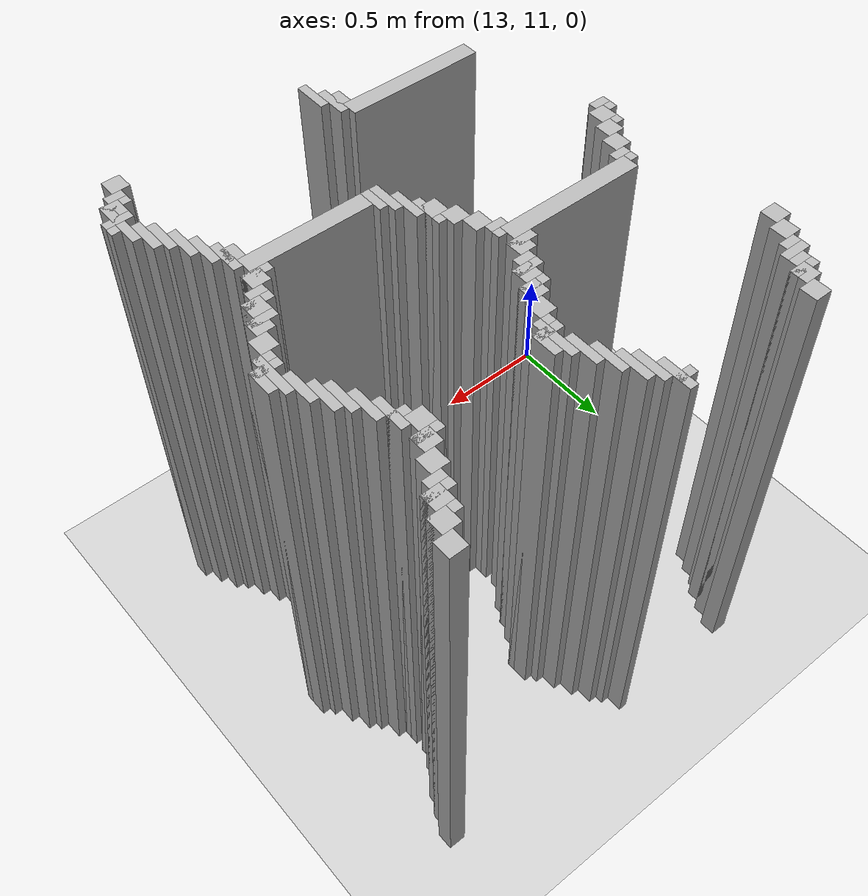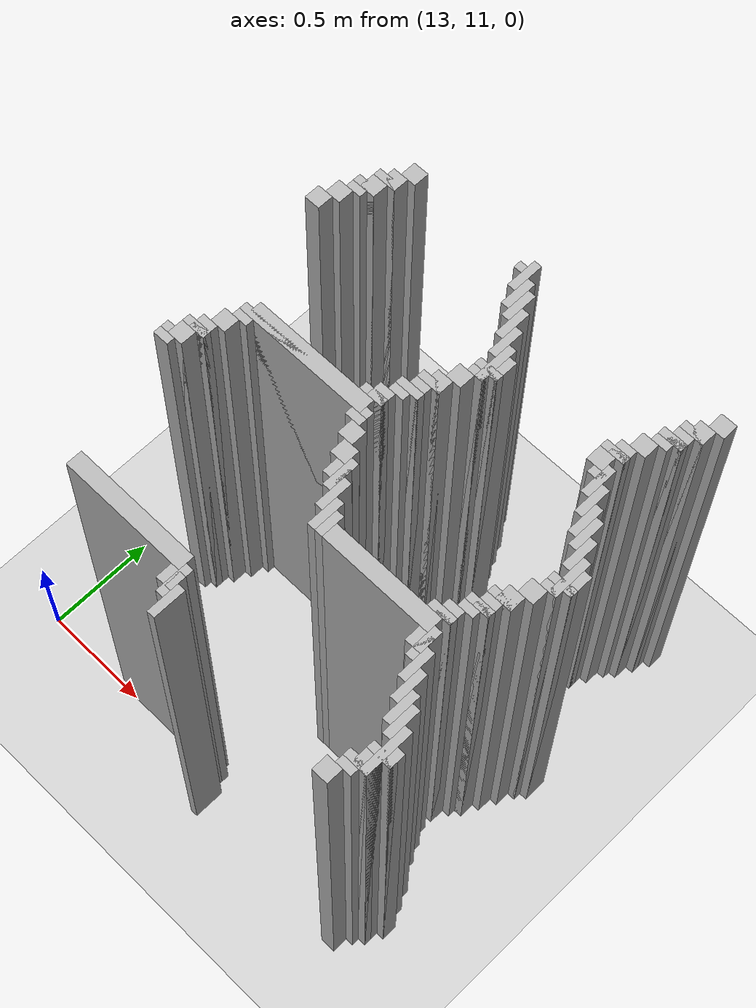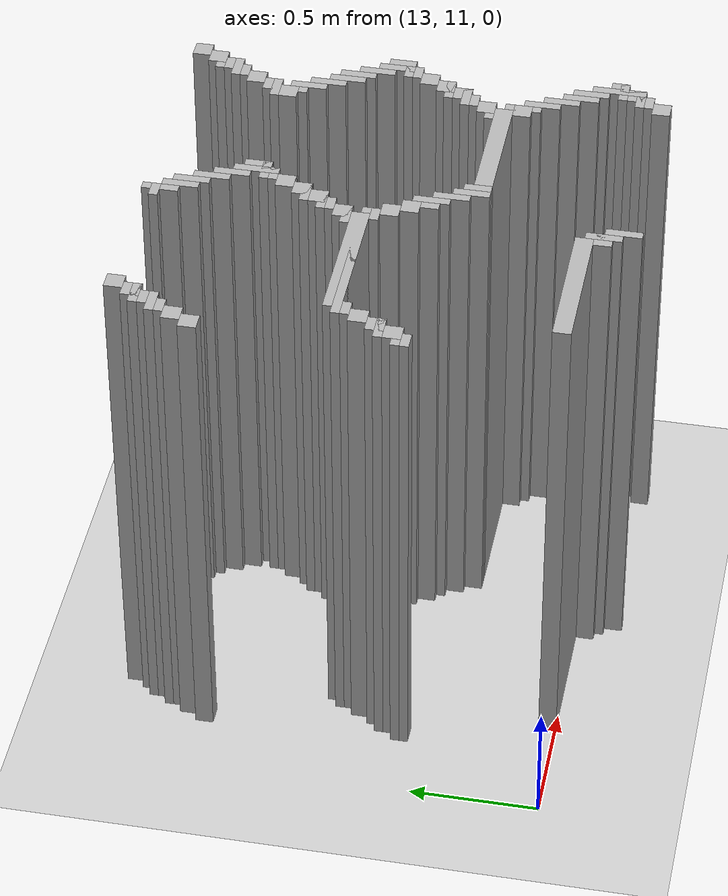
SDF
<sdf version="1.6">
 <world name="slam_world">
  <model name="ground_plane">
   <static>true</static>
   <link name="link">
    <collision name="collision">
     <geometry><plane><normal>0 0 1</normal><size>100 100</size></plane></geometry>
    </collision>
    <visual name="visual">
     <geometry><plane><normal>0 0 1</normal><size>100 100</size></plane></geometry>
     <material>
      <ambient>0.8 0.8 0.8 1</ambient>
      <diffuse>0.8 0.8 0.8 1</diffuse>
      <specular>0.8 0.8 0.8 1</specular>
     </material>
    </visual>
   </link>
  </model>
  <model name="wall_1583">
   <static>true</static>
   <pose>13.433874709976797 12.668213457076565 1.0 0 0 0</pose>
   <link name="link">
    <collision name="collision">
     <geometry><box><size>0.06960556844547564 0.06960556844547564 2.0</size></box></geometry>
    </collision>
    <visual name="visual">
     <geometry><box><size>0.06960556844547564 0.06960556844547564 2.0</size></box></geometry>
     <material><ambient>0.5 0.5 0.5 1</ambient><diffuse>0.7 0.7 0.7 1</diffuse></material>
    </visual>
   </link>
  </model>
  <model name="wall_1584">
   <static>true</static>
   <pose>14.008120649651971 12.633410672853827 1.0 0 0 0</pose>
   <link name="link">
    <collision name="collision">
     <geometry><box><size>0.03480278422273782 0.13921113689095127 2.0</size></box></geometry>
    </collision>
    <visual name="visual">
     <geometry><box><size>0.03480278422273782 0.13921113689095127 2.0</size></box></geometry>
     <material><ambient>0.5 0.5 0.5 1</ambient><diffuse>0.7 0.7 0.7 1</diffuse></material>
    </visual>
   </link>
  </model>
  <model name="wall_1585">
   <static>true</static>
   <pose>14.895591647331786 12.668213457076565 1.0 0 0 0</pose>
   <link name="link">
    <collision name="collision">
     <geometry><box><size>0.06960556844547564 0.06960556844547564 2.0</size></box></geometry>
    </collision>
    <visual name="visual">
     <geometry><box><size>0.06960556844547564 0.06960556844547564 2.0</size></box></geometry>
     <material><ambient>0.5 0.5 0.5 1</ambient><diffuse>0.7 0.7 0.7 1</diffuse></material>
    </visual>
   </link>
  </model>
  <model name="wall_1598">
   <static>true</static>
   <pose>13.990719257540603 12.650812064965196 1.0 0 0 0</pose>
   <link name="link">
    <collision name="collision">
     <geometry><box><size>0.06960556844547564 0.03480278422273782 2.0</size></box></geometry>
    </collision>
    <visual name="visual">
     <geometry><box><size>0.06960556844547564 0.03480278422273782 2.0</size></box></geometry>
     <material><ambient>0.5 0.5 0.5 1</ambient><diffuse>0.7 0.7 0.7 1</diffuse></material>
    </visual>
   </link>
  </model>
  <model name="wall_1613">
   <static>true</static>
   <pose>13.39907192575406 12.59860788863109 1.0 0 0 0</pose>
   <link name="link">
    <collision name="collision">
     <geometry><box><size>0.06960556844547564 0.06960556844547564 2.0</size></box></geometry>
    </collision>
    <visual name="visual">
     <geometry><box><size>0.06960556844547564 0.06960556844547564 2.0</size></box></geometry>
     <material><ambient>0.5 0.5 0.5 1</ambient><diffuse>0.7 0.7 0.7 1</diffuse></material>
    </visual>
   </link>
  </model>
  <model name="wall_1614">
   <static>true</static>
   <pose>14.042923433874709 12.563805104408353 1.0 0 0 0</pose>
   <link name="link">
    <collision name="collision">
     <geometry><box><size>0.03480278422273782 0.13921113689095127 2.0</size></box></geometry>
    </collision>
    <visual name="visual">
     <geometry><box><size>0.03480278422273782 0.13921113689095127 2.0</size></box></geometry>
     <material><ambient>0.5 0.5 0.5 1</ambient><diffuse>0.7 0.7 0.7 1</diffuse></material>
    </visual>
   </link>
  </model>
  <model name="wall_1615">
   <static>true</static>
   <pose>14.860788863109049 12.59860788863109 1.0 0 0 0</pose>
   <link name="link">
    <collision name="collision">
     <geometry><box><size>0.06960556844547564 0.06960556844547564 2.0</size></box></geometry>
    </collision>
    <visual name="visual">
     <geometry><box><size>0.06960556844547564 0.06960556844547564 2.0</size></box></geometry>
     <material><ambient>0.5 0.5 0.5 1</ambient><diffuse>0.7 0.7 0.7 1</diffuse></material>
    </visual>
   </link>
  </model>
  <model name="wall_1630">
   <static>true</static>
   <pose>13.38167053364269 12.581206496519721 1.0 0 0 0</pose>
   <link name="link">
    <collision name="collision">
     <geometry><box><size>0.10440835266821345 0.03480278422273782 2.0</size></box></geometry>
    </collision>
    <visual name="visual">
     <geometry><box><size>0.10440835266821345 0.03480278422273782 2.0</size></box></geometry>
     <material><ambient>0.5 0.5 0.5 1</ambient><diffuse>0.7 0.7 0.7 1</diffuse></material>
    </visual>
   </link>
  </model>
  <model name="wall_1631">
   <static>true</static>
   <pose>14.077726218097448 12.529002320185615 1.0 0 0 0</pose>
   <link name="link">
    <collision name="collision">
     <geometry><box><size>0.03480278422273782 0.13921113689095127 2.0</size></box></geometry>
    </collision>
    <visual name="visual">
     <geometry><box><size>0.03480278422273782 0.13921113689095127 2.0</size></box></geometry>
     <material><ambient>0.5 0.5 0.5 1</ambient><diffuse>0.7 0.7 0.7 1</diffuse></material>
    </visual>
   </link>
  </model>
  <model name="wall_1632">
   <static>true</static>
   <pose>14.84338747099768 12.581206496519721 1.0 0 0 0</pose>
   <link name="link">
    <collision name="collision">
     <geometry><box><size>0.10440835266821345 0.03480278422273782 2.0</size></box></geometry>
    </collision>
    <visual name="visual">
     <geometry><box><size>0.10440835266821345 0.03480278422273782 2.0</size></box></geometry>
     <material><ambient>0.5 0.5 0.5 1</ambient><diffuse>0.7 0.7 0.7 1</diffuse></material>
    </visual>
   </link>
  </model>
  <model name="wall_1642">
   <static>true</static>
   <pose>13.364269141531322 12.529002320185615 1.0 0 0 0</pose>
   <link name="link">
    <collision name="collision">
     <geometry><box><size>0.06960556844547564 0.06960556844547564 2.0</size></box></geometry>
    </collision>
    <visual name="visual">
     <geometry><box><size>0.06960556844547564 0.06960556844547564 2.0</size></box></geometry>
     <material><ambient>0.5 0.5 0.5 1</ambient><diffuse>0.7 0.7 0.7 1</diffuse></material>
    </visual>
   </link>
  </model>
  <model name="wall_1643">
   <static>true</static>
   <pose>14.825986078886311 12.529002320185615 1.0 0 0 0</pose>
   <link name="link">
    <collision name="collision">
     <geometry><box><size>0.06960556844547564 0.06960556844547564 2.0</size></box></geometry>
    </collision>
    <visual name="visual">
     <geometry><box><size>0.06960556844547564 0.06960556844547564 2.0</size></box></geometry>
     <material><ambient>0.5 0.5 0.5 1</ambient><diffuse>0.7 0.7 0.7 1</diffuse></material>
    </visual>
   </link>
  </model>
  <model name="wall_1658">
   <static>true</static>
   <pose>13.346867749419953 12.511600928074245 1.0 0 0 0</pose>
   <link name="link">
    <collision name="collision">
     <geometry><box><size>0.10440835266821345 0.03480278422273782 2.0</size></box></geometry>
    </collision>
    <visual name="visual">
     <geometry><box><size>0.10440835266821345 0.03480278422273782 2.0</size></box></geometry>
     <material><ambient>0.5 0.5 0.5 1</ambient><diffuse>0.7 0.7 0.7 1</diffuse></material>
    </visual>
   </link>
  </model>
  <model name="wall_1659">
   <static>true</static>
   <pose>14.112529002320185 12.459396751740138 1.0 0 0 0</pose>
   <link name="link">
    <collision name="collision">
     <geometry><box><size>0.03480278422273782 0.13921113689095127 2.0</size></box></geometry>
    </collision>
    <visual name="visual">
     <geometry><box><size>0.03480278422273782 0.13921113689095127 2.0</size></box></geometry>
     <material><ambient>0.5 0.5 0.5 1</ambient><diffuse>0.7 0.7 0.7 1</diffuse></material>
    </visual>
   </link>
  </model>
  <model name="wall_1660">
   <static>true</static>
   <pose>14.80858468677494 12.511600928074245 1.0 0 0 0</pose>
   <link name="link">
    <collision name="collision">
     <geometry><box><size>0.10440835266821345 0.03480278422273782 2.0</size></box></geometry>
    </collision>
    <visual name="visual">
     <geometry><box><size>0.10440835266821345 0.03480278422273782 2.0</size></box></geometry>
     <material><ambient>0.5 0.5 0.5 1</ambient><diffuse>0.7 0.7 0.7 1</diffuse></material>
    </visual>
   </link>
  </model>
  <model name="wall_1668">
   <static>true</static>
   <pose>13.329466357308585 12.476798143851507 1.0 0 0 0</pose>
   <link name="link">
    <collision name="collision">
     <geometry><box><size>0.06960556844547564 0.03480278422273782 2.0</size></box></geometry>
    </collision>
    <visual name="visual">
     <geometry><box><size>0.06960556844547564 0.03480278422273782 2.0</size></box></geometry>
     <material><ambient>0.5 0.5 0.5 1</ambient><diffuse>0.7 0.7 0.7 1</diffuse></material>
    </visual>
   </link>
  </model>
  <model name="wall_1669">
   <static>true</static>
   <pose>14.791183294663572 12.476798143851507 1.0 0 0 0</pose>
   <link name="link">
    <collision name="collision">
     <geometry><box><size>0.06960556844547564 0.03480278422273782 2.0</size></box></geometry>
    </collision>
    <visual name="visual">
     <geometry><box><size>0.06960556844547564 0.03480278422273782 2.0</size></box></geometry>
     <material><ambient>0.5 0.5 0.5 1</ambient><diffuse>0.7 0.7 0.7 1</diffuse></material>
    </visual>
   </link>
  </model>
  <model name="wall_1684">
   <static>true</static>
   <pose>13.294663573085847 12.424593967517401 1.0 0 0 0</pose>
   <link name="link">
    <collision name="collision">
     <geometry><box><size>0.06960556844547564 0.06960556844547564 2.0</size></box></geometry>
    </collision>
    <visual name="visual">
     <geometry><box><size>0.06960556844547564 0.06960556844547564 2.0</size></box></geometry>
     <material><ambient>0.5 0.5 0.5 1</ambient><diffuse>0.7 0.7 0.7 1</diffuse></material>
    </visual>
   </link>
  </model>
  <model name="wall_1685">
   <static>true</static>
   <pose>14.147331786542923 12.389791183294664 1.0 0 0 0</pose>
   <link name="link">
    <collision name="collision">
     <geometry><box><size>0.03480278422273782 0.13921113689095127 2.0</size></box></geometry>
    </collision>
    <visual name="visual">
     <geometry><box><size>0.03480278422273782 0.13921113689095127 2.0</size></box></geometry>
     <material><ambient>0.5 0.5 0.5 1</ambient><diffuse>0.7 0.7 0.7 1</diffuse></material>
    </visual>
   </link>
  </model>
  <model name="wall_1686">
   <static>true</static>
   <pose>14.756380510440835 12.424593967517401 1.0 0 0 0</pose>
   <link name="link">
    <collision name="collision">
     <geometry><box><size>0.06960556844547564 0.06960556844547564 2.0</size></box></geometry>
    </collision>
    <visual name="visual">
     <geometry><box><size>0.06960556844547564 0.06960556844547564 2.0</size></box></geometry>
     <material><ambient>0.5 0.5 0.5 1</ambient><diffuse>0.7 0.7 0.7 1</diffuse></material>
    </visual>
   </link>
  </model>
  <model name="wall_1701">
   <static>true</static>
   <pose>13.259860788863108 12.354988399071924 1.0 0 0 0</pose>
   <link name="link">
    <collision name="collision">
     <geometry><box><size>0.06960556844547564 0.06960556844547564 2.0</size></box></geometry>
    </collision>
    <visual name="visual">
     <geometry><box><size>0.06960556844547564 0.06960556844547564 2.0</size></box></geometry>
     <material><ambient>0.5 0.5 0.5 1</ambient><diffuse>0.7 0.7 0.7 1</diffuse></material>
    </visual>
   </link>
  </model>
  <model name="wall_1702">
   <static>true</static>
   <pose>14.18213457076566 12.302784222737818 1.0 0 0 0</pose>
   <link name="link">
    <collision name="collision">
     <geometry><box><size>0.03480278422273782 0.17401392111368907 2.0</size></box></geometry>
    </collision>
    <visual name="visual">
     <geometry><box><size>0.03480278422273782 0.17401392111368907 2.0</size></box></geometry>
     <material><ambient>0.5 0.5 0.5 1</ambient><diffuse>0.7 0.7 0.7 1</diffuse></material>
    </visual>
   </link>
  </model>
  <model name="wall_1703">
   <static>true</static>
   <pose>14.721577726218097 12.354988399071924 1.0 0 0 0</pose>
   <link name="link">
    <collision name="collision">
     <geometry><box><size>0.06960556844547564 0.06960556844547564 2.0</size></box></geometry>
    </collision>
    <visual name="visual">
     <geometry><box><size>0.06960556844547564 0.06960556844547564 2.0</size></box></geometry>
     <material><ambient>0.5 0.5 0.5 1</ambient><diffuse>0.7 0.7 0.7 1</diffuse></material>
    </visual>
   </link>
  </model>
  <model name="wall_1717">
   <static>true</static>
   <pose>14.2169373549884 12.302784222737818 1.0 0 0 0</pose>
   <link name="link">
    <collision name="collision">
     <geometry><box><size>0.03480278422273782 0.10440835266821345 2.0</size></box></geometry>
    </collision>
    <visual name="visual">
     <geometry><box><size>0.03480278422273782 0.10440835266821345 2.0</size></box></geometry>
     <material><ambient>0.5 0.5 0.5 1</ambient><diffuse>0.7 0.7 0.7 1</diffuse></material>
    </visual>
   </link>
  </model>
  <model name="wall_1718">
   <static>true</static>
   <pose>14.704176334106728 12.337587006960556 1.0 0 0 0</pose>
   <link name="link">
    <collision name="collision">
     <geometry><box><size>0.10440835266821345 0.03480278422273782 2.0</size></box></geometry>
    </collision>
    <visual name="visual">
     <geometry><box><size>0.10440835266821345 0.03480278422273782 2.0</size></box></geometry>
     <material><ambient>0.5 0.5 0.5 1</ambient><diffuse>0.7 0.7 0.7 1</diffuse></material>
    </visual>
   </link>
  </model>
  <model name="wall_1730">
   <static>true</static>
   <pose>14.68677494199536 12.28538283062645 1.0 0 0 0</pose>
   <link name="link">
    <collision name="collision">
     <geometry><box><size>0.06960556844547564 0.06960556844547564 2.0</size></box></geometry>
    </collision>
    <visual name="visual">
     <geometry><box><size>0.06960556844547564 0.06960556844547564 2.0</size></box></geometry>
     <material><ambient>0.5 0.5 0.5 1</ambient><diffuse>0.7 0.7 0.7 1</diffuse></material>
    </visual>
   </link>
  </model>
  <model name="wall_1747">
   <static>true</static>
   <pose>14.18213457076566 12.267981438515081 1.0 0 0 0</pose>
   <link name="link">
    <collision name="collision">
     <geometry><box><size>0.10440835266821345 0.03480278422273782 2.0</size></box></geometry>
    </collision>
    <visual name="visual">
     <geometry><box><size>0.10440835266821345 0.03480278422273782 2.0</size></box></geometry>
     <material><ambient>0.5 0.5 0.5 1</ambient><diffuse>0.7 0.7 0.7 1</diffuse></material>
    </visual>
   </link>
  </model>
  <model name="wall_1748">
   <static>true</static>
   <pose>14.738979118329466 12.215777262180975 1.0 0 0 0</pose>
   <link name="link">
    <collision name="collision">
     <geometry><box><size>0.03480278422273782 0.13921113689095127 2.0</size></box></geometry>
    </collision>
    <visual name="visual">
     <geometry><box><size>0.03480278422273782 0.13921113689095127 2.0</size></box></geometry>
     <material><ambient>0.5 0.5 0.5 1</ambient><diffuse>0.7 0.7 0.7 1</diffuse></material>
    </visual>
   </link>
  </model>
  <model name="wall_1763">
   <static>true</static>
   <pose>14.164733178654291 12.233178654292344 1.0 0 0 0</pose>
   <link name="link">
    <collision name="collision">
     <geometry><box><size>0.06960556844547564 0.03480278422273782 2.0</size></box></geometry>
    </collision>
    <visual name="visual">
     <geometry><box><size>0.06960556844547564 0.03480278422273782 2.0</size></box></geometry>
     <material><ambient>0.5 0.5 0.5 1</ambient><diffuse>0.7 0.7 0.7 1</diffuse></material>
    </visual>
   </link>
  </model>
  <model name="wall_1764">
   <static>true</static>
   <pose>14.721577726218097 12.233178654292344 1.0 0 0 0</pose>
   <link name="link">
    <collision name="collision">
     <geometry><box><size>0.06960556844547564 0.03480278422273782 2.0</size></box></geometry>
    </collision>
    <visual name="visual">
     <geometry><box><size>0.06960556844547564 0.03480278422273782 2.0</size></box></geometry>
     <material><ambient>0.5 0.5 0.5 1</ambient><diffuse>0.7 0.7 0.7 1</diffuse></material>
    </visual>
   </link>
  </model>
  <model name="wall_1779">
   <static>true</static>
   <pose>14.129930394431554 12.180974477958236 1.0 0 0 0</pose>
   <link name="link">
    <collision name="collision">
     <geometry><box><size>0.06960556844547564 0.06960556844547564 2.0</size></box></geometry>
    </collision>
    <visual name="visual">
     <geometry><box><size>0.06960556844547564 0.06960556844547564 2.0</size></box></geometry>
     <material><ambient>0.5 0.5 0.5 1</ambient><diffuse>0.7 0.7 0.7 1</diffuse></material>
    </visual>
   </link>
  </model>
  <model name="wall_1780">
   <static>true</static>
   <pose>14.773781902552203 12.146171693735498 1.0 0 0 0</pose>
   <link name="link">
    <collision name="collision">
     <geometry><box><size>0.03480278422273782 0.13921113689095127 2.0</size></box></geometry>
    </collision>
    <visual name="visual">
     <geometry><box><size>0.03480278422273782 0.13921113689095127 2.0</size></box></geometry>
     <material><ambient>0.5 0.5 0.5 1</ambient><diffuse>0.7 0.7 0.7 1</diffuse></material>
    </visual>
   </link>
  </model>
  <model name="wall_1795">
   <static>true</static>
   <pose>14.095127610208817 12.11136890951276 1.0 0 0 0</pose>
   <link name="link">
    <collision name="collision">
     <geometry><box><size>0.06960556844547564 0.06960556844547564 2.0</size></box></geometry>
    </collision>
    <visual name="visual">
     <geometry><box><size>0.06960556844547564 0.06960556844547564 2.0</size></box></geometry>
     <material><ambient>0.5 0.5 0.5 1</ambient><diffuse>0.7 0.7 0.7 1</diffuse></material>
    </visual>
   </link>
  </model>
  <model name="wall_1796">
   <static>true</static>
   <pose>14.80858468677494 12.076566125290023 1.0 0 0 0</pose>
   <link name="link">
    <collision name="collision">
     <geometry><box><size>0.03480278422273782 0.13921113689095127 2.0</size></box></geometry>
    </collision>
    <visual name="visual">
     <geometry><box><size>0.03480278422273782 0.13921113689095127 2.0</size></box></geometry>
     <material><ambient>0.5 0.5 0.5 1</ambient><diffuse>0.7 0.7 0.7 1</diffuse></material>
    </visual>
   </link>
  </model>
  <model name="wall_1811">
   <static>true</static>
   <pose>14.077726218097448 12.093967517401392 1.0 0 0 0</pose>
   <link name="link">
    <collision name="collision">
     <geometry><box><size>0.10440835266821345 0.03480278422273782 2.0</size></box></geometry>
    </collision>
    <visual name="visual">
     <geometry><box><size>0.10440835266821345 0.03480278422273782 2.0</size></box></geometry>
     <material><ambient>0.5 0.5 0.5 1</ambient><diffuse>0.7 0.7 0.7 1</diffuse></material>
    </visual>
   </link>
  </model>
  <model name="wall_1812">
   <static>true</static>
   <pose>14.84338747099768 12.041763341067284 1.0 0 0 0</pose>
   <link name="link">
    <collision name="collision">
     <geometry><box><size>0.03480278422273782 0.13921113689095127 2.0</size></box></geometry>
    </collision>
    <visual name="visual">
     <geometry><box><size>0.03480278422273782 0.13921113689095127 2.0</size></box></geometry>
     <material><ambient>0.5 0.5 0.5 1</ambient><diffuse>0.7 0.7 0.7 1</diffuse></material>
    </visual>
   </link>
  </model>
  <model name="wall_1822">
   <static>true</static>
   <pose>14.06032482598608 12.041763341067284 1.0 0 0 0</pose>
   <link name="link">
    <collision name="collision">
     <geometry><box><size>0.06960556844547564 0.06960556844547564 2.0</size></box></geometry>
    </collision>
    <visual name="visual">
     <geometry><box><size>0.06960556844547564 0.06960556844547564 2.0</size></box></geometry>
     <material><ambient>0.5 0.5 0.5 1</ambient><diffuse>0.7 0.7 0.7 1</diffuse></material>
    </visual>
   </link>
  </model>
  <model name="wall_1837">
   <static>true</static>
   <pose>14.042923433874709 12.024361948955915 1.0 0 0 0</pose>
   <link name="link">
    <collision name="collision">
     <geometry><box><size>0.10440835266821345 0.03480278422273782 2.0</size></box></geometry>
    </collision>
    <visual name="visual">
     <geometry><box><size>0.10440835266821345 0.03480278422273782 2.0</size></box></geometry>
     <material><ambient>0.5 0.5 0.5 1</ambient><diffuse>0.7 0.7 0.7 1</diffuse></material>
    </visual>
   </link>
  </model>
  <model name="wall_1838">
   <static>true</static>
   <pose>14.878190255220417 11.97215777262181 1.0 0 0 0</pose>
   <link name="link">
    <collision name="collision">
     <geometry><box><size>0.03480278422273782 0.13921113689095127 2.0</size></box></geometry>
    </collision>
    <visual name="visual">
     <geometry><box><size>0.03480278422273782 0.13921113689095127 2.0</size></box></geometry>
     <material><ambient>0.5 0.5 0.5 1</ambient><diffuse>0.7 0.7 0.7 1</diffuse></material>
    </visual>
   </link>
  </model>
  <model name="wall_1846">
   <static>true</static>
   <pose>14.02552204176334 11.989559164733178 1.0 0 0 0</pose>
   <link name="link">
    <collision name="collision">
     <geometry><box><size>0.06960556844547564 0.03480278422273782 2.0</size></box></geometry>
    </collision>
    <visual name="visual">
     <geometry><box><size>0.06960556844547564 0.03480278422273782 2.0</size></box></geometry>
     <material><ambient>0.5 0.5 0.5 1</ambient><diffuse>0.7 0.7 0.7 1</diffuse></material>
    </visual>
   </link>
  </model>
  <model name="wall_1861">
   <static>true</static>
   <pose>13.990719257540603 11.937354988399072 1.0 0 0 0</pose>
   <link name="link">
    <collision name="collision">
     <geometry><box><size>0.06960556844547564 0.06960556844547564 2.0</size></box></geometry>
    </collision>
    <visual name="visual">
     <geometry><box><size>0.06960556844547564 0.06960556844547564 2.0</size></box></geometry>
     <material><ambient>0.5 0.5 0.5 1</ambient><diffuse>0.7 0.7 0.7 1</diffuse></material>
    </visual>
   </link>
  </model>
  <model name="wall_1862">
   <static>true</static>
   <pose>14.912993039443155 11.885150812064964 1.0 0 0 0</pose>
   <link name="link">
    <collision name="collision">
     <geometry><box><size>0.03480278422273782 0.17401392111368907 2.0</size></box></geometry>
    </collision>
    <visual name="visual">
     <geometry><box><size>0.03480278422273782 0.17401392111368907 2.0</size></box></geometry>
     <material><ambient>0.5 0.5 0.5 1</ambient><diffuse>0.7 0.7 0.7 1</diffuse></material>
    </visual>
   </link>
  </model>
  <model name="wall_1877">
   <static>true</static>
   <pose>13.973317865429234 11.919953596287703 1.0 0 0 0</pose>
   <link name="link">
    <collision name="collision">
     <geometry><box><size>0.10440835266821345 0.03480278422273782 2.0</size></box></geometry>
    </collision>
    <visual name="visual">
     <geometry><box><size>0.10440835266821345 0.03480278422273782 2.0</size></box></geometry>
     <material><ambient>0.5 0.5 0.5 1</ambient><diffuse>0.7 0.7 0.7 1</diffuse></material>
    </visual>
   </link>
  </model>
  <model name="wall_1878">
   <static>true</static>
   <pose>14.947795823665892 11.885150812064964 1.0 0 0 0</pose>
   <link name="link">
    <collision name="collision">
     <geometry><box><size>0.03480278422273782 0.10440835266821345 2.0</size></box></geometry>
    </collision>
    <visual name="visual">
     <geometry><box><size>0.03480278422273782 0.10440835266821345 2.0</size></box></geometry>
     <material><ambient>0.5 0.5 0.5 1</ambient><diffuse>0.7 0.7 0.7 1</diffuse></material>
    </visual>
   </link>
  </model>
  <model name="wall_1889">
   <static>true</static>
   <pose>13.7122969837587 11.867749419953595 1.0 0 0 0</pose>
   <link name="link">
    <collision name="collision">
     <geometry><box><size>0.5568445475638051 0.06960556844547564 2.0</size></box></geometry>
    </collision>
    <visual name="visual">
     <geometry><box><size>0.5568445475638051 0.06960556844547564 2.0</size></box></geometry>
     <material><ambient>0.5 0.5 0.5 1</ambient><diffuse>0.7 0.7 0.7 1</diffuse></material>
    </visual>
   </link>
  </model>
  <model name="wall_1902">
   <static>true</static>
   <pose>13.7122969837587 11.850348027842227 1.0 0 0 0</pose>
   <link name="link">
    <collision name="collision">
     <geometry><box><size>0.6264501160092807 0.03480278422273782 2.0</size></box></geometry>
    </collision>
    <visual name="visual">
     <geometry><box><size>0.6264501160092807 0.03480278422273782 2.0</size></box></geometry>
     <material><ambient>0.5 0.5 0.5 1</ambient><diffuse>0.7 0.7 0.7 1</diffuse></material>
    </visual>
   </link>
  </model>
  <model name="wall_1903">
   <static>true</static>
   <pose>14.912993039443155 11.850348027842227 1.0 0 0 0</pose>
   <link name="link">
    <collision name="collision">
     <geometry><box><size>0.10440835266821345 0.03480278422273782 2.0</size></box></geometry>
    </collision>
    <visual name="visual">
     <geometry><box><size>0.10440835266821345 0.03480278422273782 2.0</size></box></geometry>
     <material><ambient>0.5 0.5 0.5 1</ambient><diffuse>0.7 0.7 0.7 1</diffuse></material>
    </visual>
   </link>
  </model>
  <model name="wall_1917">
   <static>true</static>
   <pose>13.433874709976797 11.81554524361949 1.0 0 0 0</pose>
   <link name="link">
    <collision name="collision">
     <geometry><box><size>0.06960556844547564 0.03480278422273782 2.0</size></box></geometry>
    </collision>
    <visual name="visual">
     <geometry><box><size>0.06960556844547564 0.03480278422273782 2.0</size></box></geometry>
     <material><ambient>0.5 0.5 0.5 1</ambient><diffuse>0.7 0.7 0.7 1</diffuse></material>
    </visual>
   </link>
  </model>
  <model name="wall_1918">
   <static>true</static>
   <pose>13.990719257540603 11.81554524361949 1.0 0 0 0</pose>
   <link name="link">
    <collision name="collision">
     <geometry><box><size>0.06960556844547564 0.03480278422273782 2.0</size></box></geometry>
    </collision>
    <visual name="visual">
     <geometry><box><size>0.06960556844547564 0.03480278422273782 2.0</size></box></geometry>
     <material><ambient>0.5 0.5 0.5 1</ambient><diffuse>0.7 0.7 0.7 1</diffuse></material>
    </visual>
   </link>
  </model>
  <model name="wall_1919">
   <static>true</static>
   <pose>14.895591647331786 11.81554524361949 1.0 0 0 0</pose>
   <link name="link">
    <collision name="collision">
     <geometry><box><size>0.06960556844547564 0.03480278422273782 2.0</size></box></geometry>
    </collision>
    <visual name="visual">
     <geometry><box><size>0.06960556844547564 0.03480278422273782 2.0</size></box></geometry>
     <material><ambient>0.5 0.5 0.5 1</ambient><diffuse>0.7 0.7 0.7 1</diffuse></material>
    </visual>
   </link>
  </model>
  <model name="wall_1933">
   <static>true</static>
   <pose>13.39907192575406 11.763341067285383 1.0 0 0 0</pose>
   <link name="link">
    <collision name="collision">
     <geometry><box><size>0.06960556844547564 0.06960556844547564 2.0</size></box></geometry>
    </collision>
    <visual name="visual">
     <geometry><box><size>0.06960556844547564 0.06960556844547564 2.0</size></box></geometry>
     <material><ambient>0.5 0.5 0.5 1</ambient><diffuse>0.7 0.7 0.7 1</diffuse></material>
    </visual>
   </link>
  </model>
  <model name="wall_1934">
   <static>true</static>
   <pose>14.02552204176334 11.763341067285383 1.0 0 0 0</pose>
   <link name="link">
    <collision name="collision">
     <geometry><box><size>0.06960556844547564 0.06960556844547564 2.0</size></box></geometry>
    </collision>
    <visual name="visual">
     <geometry><box><size>0.06960556844547564 0.06960556844547564 2.0</size></box></geometry>
     <material><ambient>0.5 0.5 0.5 1</ambient><diffuse>0.7 0.7 0.7 1</diffuse></material>
    </visual>
   </link>
  </model>
  <model name="wall_1935">
   <static>true</static>
   <pose>14.860788863109049 11.763341067285383 1.0 0 0 0</pose>
   <link name="link">
    <collision name="collision">
     <geometry><box><size>0.06960556844547564 0.06960556844547564 2.0</size></box></geometry>
    </collision>
    <visual name="visual">
     <geometry><box><size>0.06960556844547564 0.06960556844547564 2.0</size></box></geometry>
     <material><ambient>0.5 0.5 0.5 1</ambient><diffuse>0.7 0.7 0.7 1</diffuse></material>
    </visual>
   </link>
  </model>
  <model name="wall_1949">
   <static>true</static>
   <pose>13.364269141531322 11.693735498839906 1.0 0 0 0</pose>
   <link name="link">
    <collision name="collision">
     <geometry><box><size>0.06960556844547564 0.06960556844547564 2.0</size></box></geometry>
    </collision>
    <visual name="visual">
     <geometry><box><size>0.06960556844547564 0.06960556844547564 2.0</size></box></geometry>
     <material><ambient>0.5 0.5 0.5 1</ambient><diffuse>0.7 0.7 0.7 1</diffuse></material>
    </visual>
   </link>
  </model>
  <model name="wall_1950">
   <static>true</static>
   <pose>14.06032482598608 11.693735498839906 1.0 0 0 0</pose>
   <link name="link">
    <collision name="collision">
     <geometry><box><size>0.06960556844547564 0.06960556844547564 2.0</size></box></geometry>
    </collision>
    <visual name="visual">
     <geometry><box><size>0.06960556844547564 0.06960556844547564 2.0</size></box></geometry>
     <material><ambient>0.5 0.5 0.5 1</ambient><diffuse>0.7 0.7 0.7 1</diffuse></material>
    </visual>
   </link>
  </model>
  <model name="wall_1951">
   <static>true</static>
   <pose>14.825986078886311 11.693735498839906 1.0 0 0 0</pose>
   <link name="link">
    <collision name="collision">
     <geometry><box><size>0.06960556844547564 0.06960556844547564 2.0</size></box></geometry>
    </collision>
    <visual name="visual">
     <geometry><box><size>0.06960556844547564 0.06960556844547564 2.0</size></box></geometry>
     <material><ambient>0.5 0.5 0.5 1</ambient><diffuse>0.7 0.7 0.7 1</diffuse></material>
    </visual>
   </link>
  </model>
  <model name="wall_1965">
   <static>true</static>
   <pose>13.346867749419953 11.676334106728538 1.0 0 0 0</pose>
   <link name="link">
    <collision name="collision">
     <geometry><box><size>0.10440835266821345 0.03480278422273782 2.0</size></box></geometry>
    </collision>
    <visual name="visual">
     <geometry><box><size>0.10440835266821345 0.03480278422273782 2.0</size></box></geometry>
     <material><ambient>0.5 0.5 0.5 1</ambient><diffuse>0.7 0.7 0.7 1</diffuse></material>
    </visual>
   </link>
  </model>
  <model name="wall_1966">
   <static>true</static>
   <pose>14.112529002320185 11.624129930394432 1.0 0 0 0</pose>
   <link name="link">
    <collision name="collision">
     <geometry><box><size>0.03480278422273782 0.13921113689095127 2.0</size></box></geometry>
    </collision>
    <visual name="visual">
     <geometry><box><size>0.03480278422273782 0.13921113689095127 2.0</size></box></geometry>
     <material><ambient>0.5 0.5 0.5 1</ambient><diffuse>0.7 0.7 0.7 1</diffuse></material>
    </visual>
   </link>
  </model>
  <model name="wall_1967">
   <static>true</static>
   <pose>14.80858468677494 11.676334106728538 1.0 0 0 0</pose>
   <link name="link">
    <collision name="collision">
     <geometry><box><size>0.10440835266821345 0.03480278422273782 2.0</size></box></geometry>
    </collision>
    <visual name="visual">
     <geometry><box><size>0.10440835266821345 0.03480278422273782 2.0</size></box></geometry>
     <material><ambient>0.5 0.5 0.5 1</ambient><diffuse>0.7 0.7 0.7 1</diffuse></material>
    </visual>
   </link>
  </model>
  <model name="wall_1975">
   <static>true</static>
   <pose>13.329466357308585 11.624129930394432 1.0 0 0 0</pose>
   <link name="link">
    <collision name="collision">
     <geometry><box><size>0.06960556844547564 0.06960556844547564 2.0</size></box></geometry>
    </collision>
    <visual name="visual">
     <geometry><box><size>0.06960556844547564 0.06960556844547564 2.0</size></box></geometry>
     <material><ambient>0.5 0.5 0.5 1</ambient><diffuse>0.7 0.7 0.7 1</diffuse></material>
    </visual>
   </link>
  </model>
  <model name="wall_1976">
   <static>true</static>
   <pose>14.095127610208817 11.624129930394432 1.0 0 0 0</pose>
   <link name="link">
    <collision name="collision">
     <geometry><box><size>0.06960556844547564 0.06960556844547564 2.0</size></box></geometry>
    </collision>
    <visual name="visual">
     <geometry><box><size>0.06960556844547564 0.06960556844547564 2.0</size></box></geometry>
     <material><ambient>0.5 0.5 0.5 1</ambient><diffuse>0.7 0.7 0.7 1</diffuse></material>
    </visual>
   </link>
  </model>
  <model name="wall_1977">
   <static>true</static>
   <pose>14.791183294663572 11.624129930394432 1.0 0 0 0</pose>
   <link name="link">
    <collision name="collision">
     <geometry><box><size>0.06960556844547564 0.06960556844547564 2.0</size></box></geometry>
    </collision>
    <visual name="visual">
     <geometry><box><size>0.06960556844547564 0.06960556844547564 2.0</size></box></geometry>
     <material><ambient>0.5 0.5 0.5 1</ambient><diffuse>0.7 0.7 0.7 1</diffuse></material>
    </visual>
   </link>
  </model>
  <model name="wall_1991">
   <static>true</static>
   <pose>13.312064965197216 11.606728538283063 1.0 0 0 0</pose>
   <link name="link">
    <collision name="collision">
     <geometry><box><size>0.10440835266821345 0.03480278422273782 2.0</size></box></geometry>
    </collision>
    <visual name="visual">
     <geometry><box><size>0.10440835266821345 0.03480278422273782 2.0</size></box></geometry>
     <material><ambient>0.5 0.5 0.5 1</ambient><diffuse>0.7 0.7 0.7 1</diffuse></material>
    </visual>
   </link>
  </model>
  <model name="wall_1992">
   <static>true</static>
   <pose>14.147331786542923 11.554524361948955 1.0 0 0 0</pose>
   <link name="link">
    <collision name="collision">
     <geometry><box><size>0.03480278422273782 0.13921113689095127 2.0</size></box></geometry>
    </collision>
    <visual name="visual">
     <geometry><box><size>0.03480278422273782 0.13921113689095127 2.0</size></box></geometry>
     <material><ambient>0.5 0.5 0.5 1</ambient><diffuse>0.7 0.7 0.7 1</diffuse></material>
    </visual>
   </link>
  </model>
  <model name="wall_1993">
   <static>true</static>
   <pose>14.773781902552203 11.606728538283063 1.0 0 0 0</pose>
   <link name="link">
    <collision name="collision">
     <geometry><box><size>0.10440835266821345 0.03480278422273782 2.0</size></box></geometry>
    </collision>
    <visual name="visual">
     <geometry><box><size>0.10440835266821345 0.03480278422273782 2.0</size></box></geometry>
     <material><ambient>0.5 0.5 0.5 1</ambient><diffuse>0.7 0.7 0.7 1</diffuse></material>
    </visual>
   </link>
  </model>
  <model name="wall_1999">
   <static>true</static>
   <pose>13.294663573085847 11.571925754060324 1.0 0 0 0</pose>
   <link name="link">
    <collision name="collision">
     <geometry><box><size>0.06960556844547564 0.03480278422273782 2.0</size></box></geometry>
    </collision>
    <visual name="visual">
     <geometry><box><size>0.06960556844547564 0.03480278422273782 2.0</size></box></geometry>
     <material><ambient>0.5 0.5 0.5 1</ambient><diffuse>0.7 0.7 0.7 1</diffuse></material>
    </visual>
   </link>
  </model>
  <model name="wall_2000">
   <static>true</static>
   <pose>14.756380510440835 11.571925754060324 1.0 0 0 0</pose>
   <link name="link">
    <collision name="collision">
     <geometry><box><size>0.06960556844547564 0.03480278422273782 2.0</size></box></geometry>
    </collision>
    <visual name="visual">
     <geometry><box><size>0.06960556844547564 0.03480278422273782 2.0</size></box></geometry>
     <material><ambient>0.5 0.5 0.5 1</ambient><diffuse>0.7 0.7 0.7 1</diffuse></material>
    </visual>
   </link>
  </model>
  <model name="wall_2015">
   <static>true</static>
   <pose>14.18213457076566 11.48491879350348 1.0 0 0 0</pose>
   <link name="link">
    <collision name="collision">
     <geometry><box><size>0.03480278422273782 0.13921113689095127 2.0</size></box></geometry>
    </collision>
    <visual name="visual">
     <geometry><box><size>0.03480278422273782 0.13921113689095127 2.0</size></box></geometry>
     <material><ambient>0.5 0.5 0.5 1</ambient><diffuse>0.7 0.7 0.7 1</diffuse></material>
    </visual>
   </link>
  </model>
  <model name="wall_2016">
   <static>true</static>
   <pose>14.721577726218097 11.519721577726218 1.0 0 0 0</pose>
   <link name="link">
    <collision name="collision">
     <geometry><box><size>0.06960556844547564 0.06960556844547564 2.0</size></box></geometry>
    </collision>
    <visual name="visual">
     <geometry><box><size>0.06960556844547564 0.06960556844547564 2.0</size></box></geometry>
     <material><ambient>0.5 0.5 0.5 1</ambient><diffuse>0.7 0.7 0.7 1</diffuse></material>
    </visual>
   </link>
  </model>
  <model name="wall_2030">
   <static>true</static>
   <pose>14.2169373549884 11.467517401392112 1.0 0 0 0</pose>
   <link name="link">
    <collision name="collision">
     <geometry><box><size>0.03480278422273782 0.10440835266821345 2.0</size></box></geometry>
    </collision>
    <visual name="visual">
     <geometry><box><size>0.03480278422273782 0.10440835266821345 2.0</size></box></geometry>
     <material><ambient>0.5 0.5 0.5 1</ambient><diffuse>0.7 0.7 0.7 1</diffuse></material>
    </visual>
   </link>
  </model>
  <model name="wall_2031">
   <static>true</static>
   <pose>14.704176334106728 11.502320185614849 1.0 0 0 0</pose>
   <link name="link">
    <collision name="collision">
     <geometry><box><size>0.10440835266821345 0.03480278422273782 2.0</size></box></geometry>
    </collision>
    <visual name="visual">
     <geometry><box><size>0.10440835266821345 0.03480278422273782 2.0</size></box></geometry>
     <material><ambient>0.5 0.5 0.5 1</ambient><diffuse>0.7 0.7 0.7 1</diffuse></material>
    </visual>
   </link>
  </model>
  <model name="wall_2042">
   <static>true</static>
   <pose>14.477958236658932 11.450116009280743 1.0 0 0 0</pose>
   <link name="link">
    <collision name="collision">
     <geometry><box><size>0.4872389791183295 0.06960556844547564 2.0</size></box></geometry>
    </collision>
    <visual name="visual">
     <geometry><box><size>0.4872389791183295 0.06960556844547564 2.0</size></box></geometry>
     <material><ambient>0.5 0.5 0.5 1</ambient><diffuse>0.7 0.7 0.7 1</diffuse></material>
    </visual>
   </link>
  </model>
  <model name="wall_2053">
   <static>true</static>
   <pose>14.738979118329466 11.380510440835266 1.0 0 0 0</pose>
   <link name="link">
    <collision name="collision">
     <geometry><box><size>0.03480278422273782 0.13921113689095127 2.0</size></box></geometry>
    </collision>
    <visual name="visual">
     <geometry><box><size>0.03480278422273782 0.13921113689095127 2.0</size></box></geometry>
     <material><ambient>0.5 0.5 0.5 1</ambient><diffuse>0.7 0.7 0.7 1</diffuse></material>
    </visual>
   </link>
  </model>
  <model name="wall_2065">
   <static>true</static>
   <pose>14.721577726218097 11.380510440835266 1.0 0 0 0</pose>
   <link name="link">
    <collision name="collision">
     <geometry><box><size>0.06960556844547564 0.06960556844547564 2.0</size></box></geometry>
    </collision>
    <visual name="visual">
     <geometry><box><size>0.06960556844547564 0.06960556844547564 2.0</size></box></geometry>
     <material><ambient>0.5 0.5 0.5 1</ambient><diffuse>0.7 0.7 0.7 1</diffuse></material>
    </visual>
   </link>
  </model>
  <model name="wall_2077">
   <static>true</static>
   <pose>14.773781902552203 11.310904872389791 1.0 0 0 0</pose>
   <link name="link">
    <collision name="collision">
     <geometry><box><size>0.03480278422273782 0.13921113689095127 2.0</size></box></geometry>
    </collision>
    <visual name="visual">
     <geometry><box><size>0.03480278422273782 0.13921113689095127 2.0</size></box></geometry>
     <material><ambient>0.5 0.5 0.5 1</ambient><diffuse>0.7 0.7 0.7 1</diffuse></material>
    </visual>
   </link>
  </model>
  <model name="wall_2097">
   <static>true</static>
   <pose>14.80858468677494 11.241299303944315 1.0 0 0 0</pose>
   <link name="link">
    <collision name="collision">
     <geometry><box><size>0.03480278422273782 0.13921113689095127 2.0</size></box></geometry>
    </collision>
    <visual name="visual">
     <geometry><box><size>0.03480278422273782 0.13921113689095127 2.0</size></box></geometry>
     <material><ambient>0.5 0.5 0.5 1</ambient><diffuse>0.7 0.7 0.7 1</diffuse></material>
    </visual>
   </link>
  </model>
  <model name="wall_2109">
   <static>true</static>
   <pose>14.84338747099768 11.17169373549884 1.0 0 0 0</pose>
   <link name="link">
    <collision name="collision">
     <geometry><box><size>0.03480278422273782 0.13921113689095127 2.0</size></box></geometry>
    </collision>
    <visual name="visual">
     <geometry><box><size>0.03480278422273782 0.13921113689095127 2.0</size></box></geometry>
     <material><ambient>0.5 0.5 0.5 1</ambient><diffuse>0.7 0.7 0.7 1</diffuse></material>
    </visual>
   </link>
  </model>
  <model name="wall_2121">
   <static>true</static>
   <pose>14.878190255220417 11.1368909512761 1.0 0 0 0</pose>
   <link name="link">
    <collision name="collision">
     <geometry><box><size>0.03480278422273782 0.13921113689095127 2.0</size></box></geometry>
    </collision>
    <visual name="visual">
     <geometry><box><size>0.03480278422273782 0.13921113689095127 2.0</size></box></geometry>
     <material><ambient>0.5 0.5 0.5 1</ambient><diffuse>0.7 0.7 0.7 1</diffuse></material>
    </visual>
   </link>
  </model>
  <model name="wall_2140">
   <static>true</static>
   <pose>14.912993039443155 11.032482598607888 1.0 0 0 0</pose>
   <link name="link">
    <collision name="collision">
     <geometry><box><size>0.03480278422273782 0.2088167053364269 2.0</size></box></geometry>
    </collision>
    <visual name="visual">
     <geometry><box><size>0.03480278422273782 0.2088167053364269 2.0</size></box></geometry>
     <material><ambient>0.5 0.5 0.5 1</ambient><diffuse>0.7 0.7 0.7 1</diffuse></material>
    </visual>
   </link>
  </model>
  <model name="wall_2159">
   <static>true</static>
   <pose>13.7122969837587 11.032482598607888 1.0 0 0 0</pose>
   <link name="link">
    <collision name="collision">
     <geometry><box><size>0.5568445475638051 0.06960556844547564 2.0</size></box></geometry>
    </collision>
    <visual name="visual">
     <geometry><box><size>0.5568445475638051 0.06960556844547564 2.0</size></box></geometry>
     <material><ambient>0.5 0.5 0.5 1</ambient><diffuse>0.7 0.7 0.7 1</diffuse></material>
    </visual>
   </link>
  </model>
  <model name="wall_2160">
   <static>true</static>
   <pose>14.947795823665892 11.032482598607888 1.0 0 0 0</pose>
   <link name="link">
    <collision name="collision">
     <geometry><box><size>0.03480278422273782 0.06960556844547564 2.0</size></box></geometry>
    </collision>
    <visual name="visual">
     <geometry><box><size>0.03480278422273782 0.06960556844547564 2.0</size></box></geometry>
     <material><ambient>0.5 0.5 0.5 1</ambient><diffuse>0.7 0.7 0.7 1</diffuse></material>
    </visual>
   </link>
  </model>
  <model name="wall_2171">
   <static>true</static>
   <pose>14.008120649651971 10.962877030162412 1.0 0 0 0</pose>
   <link name="link">
    <collision name="collision">
     <geometry><box><size>0.03480278422273782 0.13921113689095127 2.0</size></box></geometry>
    </collision>
    <visual name="visual">
     <geometry><box><size>0.03480278422273782 0.13921113689095127 2.0</size></box></geometry>
     <material><ambient>0.5 0.5 0.5 1</ambient><diffuse>0.7 0.7 0.7 1</diffuse></material>
    </visual>
   </link>
  </model>
  <model name="wall_2172">
   <static>true</static>
   <pose>14.912993039443155 11.01508120649652 1.0 0 0 0</pose>
   <link name="link">
    <collision name="collision">
     <geometry><box><size>0.10440835266821345 0.03480278422273782 2.0</size></box></geometry>
    </collision>
    <visual name="visual">
     <geometry><box><size>0.10440835266821345 0.03480278422273782 2.0</size></box></geometry>
     <material><ambient>0.5 0.5 0.5 1</ambient><diffuse>0.7 0.7 0.7 1</diffuse></material>
    </visual>
   </link>
  </model>
  <model name="wall_2186">
   <static>true</static>
   <pose>13.990719257540603 10.962877030162412 1.0 0 0 0</pose>
   <link name="link">
    <collision name="collision">
     <geometry><box><size>0.06960556844547564 0.06960556844547564 2.0</size></box></geometry>
    </collision>
    <visual name="visual">
     <geometry><box><size>0.06960556844547564 0.06960556844547564 2.0</size></box></geometry>
     <material><ambient>0.5 0.5 0.5 1</ambient><diffuse>0.7 0.7 0.7 1</diffuse></material>
    </visual>
   </link>
  </model>
  <model name="wall_2187">
   <static>true</static>
   <pose>14.895591647331786 10.962877030162412 1.0 0 0 0</pose>
   <link name="link">
    <collision name="collision">
     <geometry><box><size>0.06960556844547564 0.06960556844547564 2.0</size></box></geometry>
    </collision>
    <visual name="visual">
     <geometry><box><size>0.06960556844547564 0.06960556844547564 2.0</size></box></geometry>
     <material><ambient>0.5 0.5 0.5 1</ambient><diffuse>0.7 0.7 0.7 1</diffuse></material>
    </visual>
   </link>
  </model>
  <model name="wall_2201">
   <static>true</static>
   <pose>14.042923433874709 10.893271461716937 1.0 0 0 0</pose>
   <link name="link">
    <collision name="collision">
     <geometry><box><size>0.03480278422273782 0.13921113689095127 2.0</size></box></geometry>
    </collision>
    <visual name="visual">
     <geometry><box><size>0.03480278422273782 0.13921113689095127 2.0</size></box></geometry>
     <material><ambient>0.5 0.5 0.5 1</ambient><diffuse>0.7 0.7 0.7 1</diffuse></material>
    </visual>
   </link>
  </model>
  <model name="wall_2202">
   <static>true</static>
   <pose>14.878190255220417 10.945475638051043 1.0 0 0 0</pose>
   <link name="link">
    <collision name="collision">
     <geometry><box><size>0.10440835266821345 0.03480278422273782 2.0</size></box></geometry>
    </collision>
    <visual name="visual">
     <geometry><box><size>0.10440835266821345 0.03480278422273782 2.0</size></box></geometry>
     <material><ambient>0.5 0.5 0.5 1</ambient><diffuse>0.7 0.7 0.7 1</diffuse></material>
    </visual>
   </link>
  </model>
  <model name="wall_2212">
   <static>true</static>
   <pose>14.860788863109049 10.910672853828306 1.0 0 0 0</pose>
   <link name="link">
    <collision name="collision">
     <geometry><box><size>0.06960556844547564 0.03480278422273782 2.0</size></box></geometry>
    </collision>
    <visual name="visual">
     <geometry><box><size>0.06960556844547564 0.03480278422273782 2.0</size></box></geometry>
     <material><ambient>0.5 0.5 0.5 1</ambient><diffuse>0.7 0.7 0.7 1</diffuse></material>
    </visual>
   </link>
  </model>
  <model name="wall_2227">
   <static>true</static>
   <pose>14.825986078886311 10.8584686774942 1.0 0 0 0</pose>
   <link name="link">
    <collision name="collision">
     <geometry><box><size>0.06960556844547564 0.06960556844547564 2.0</size></box></geometry>
    </collision>
    <visual name="visual">
     <geometry><box><size>0.06960556844547564 0.06960556844547564 2.0</size></box></geometry>
     <material><ambient>0.5 0.5 0.5 1</ambient><diffuse>0.7 0.7 0.7 1</diffuse></material>
    </visual>
   </link>
  </model>
 </world>
</sdf>
